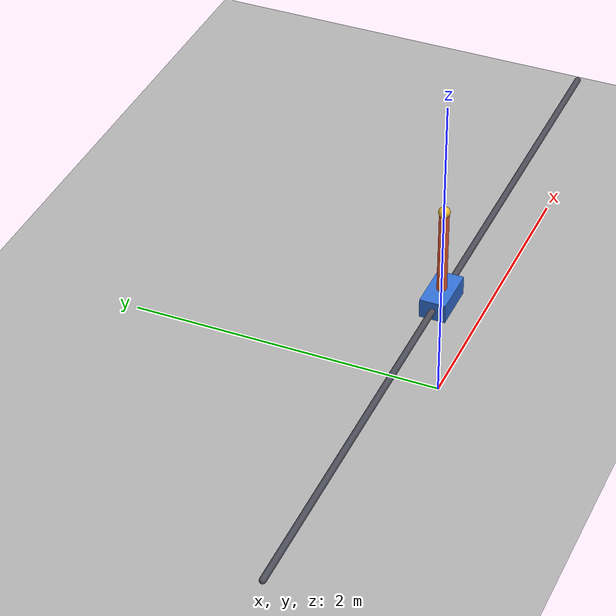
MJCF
<!-- 小车倒立摆场景：地面、光照 + 引入机器人描述 -->
<mujoco model="cartpole_scene">
  <include file="robot_description.xml"/>

  <statistic center="0 0 0.95" extent="2.5"/>

  <visual>
    <headlight diffuse="0.6 0.6 0.6" ambient="0.3 0.3 0.3" specular="0 0 0"/>
    <rgba haze="0.15 0.18 0.22 1"/>
    <global azimuth="90" elevation="-20"/>
  </visual>

  <asset>
    <texture type="skybox" builtin="gradient" rgb1="0.35 0.45 0.55"
             rgb2="0.05 0.08 0.12" width="512" height="512"/>
    <texture name="grid" type="2d" builtin="checker" mark="edge"
             rgb1="0.25 0.25 0.28" rgb2="0.32 0.32 0.35"
             markrgb="0.4 0.4 0.42" width="512" height="512"/>
    <material name="grid" texture="grid" texrepeat="8 8"
              reflectance="0.1"/>
  </asset>

  <worldbody>
    <light pos="0 0 3" dir="0 0 -1" directional="true"/>
    <geom name="floor" type="plane" size="4 4 0.05" material="grid"
          contype="0" conaffinity="0" condim="1"/>
  </worldbody>
</mujoco>

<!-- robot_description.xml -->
<!--
  二维一阶小车倒立摆（Cart-Pole）
  参数对齐常见教学/基准设定（近似 dm_control / Gym CartPole）：
    - 小车质量 1.0 kg，摆杆约 0.1 kg，杆长 0.6 m
    - 铰链近无阻尼，便于能量注入与起摆
    - 关闭接触，理想平面运动
-->
<mujoco model="cartpole">
  <compiler angle="radian" inertiafromgeom="true"/>

  <option timestep="0.002" gravity="0 0 -9.81" integrator="RK4">
    <flag contact="disable"/>
  </option>

  <default>
    <!-- 默认关节几乎无阻尼，避免默默耗散能量 -->
    <joint damping="0" armature="0"/>
    <geom rgba="0.7 0.7 0.7 1" contype="0" conaffinity="0"/>
  </default>

  <worldbody>
    <!-- 滑轨（仅可视化） -->
    <geom name="rail" type="capsule" fromto="-2.5 0 0.7 2.5 0 0.7"
          size="0.02" rgba="0.3 0.3 0.35 1"
          contype="0" conaffinity="0"/>

    <!-- 小车：沿 x 轴滑动 -->
    <body name="cart" pos="0 0 0.7">
      <!-- 轻微滑轨阻尼，保持可拖动、不过度发黏 -->
      <joint name="slider" type="slide" axis="1 0 0"
             limited="true" range="-2.2 2.2" damping="0.1"/>
      <geom name="cart_geom" type="box" size="0.15 0.08 0.06"
            mass="1.0" rgba="0.2 0.45 0.85 1"
            contype="0" conaffinity="0"/>
      <site name="cart_site" pos="0 0 0" size="0.01"/>

      <!-- 摆杆：θ=0 为竖直向上；质量集中在杆身，顶端小球仅作标记 -->
      <body name="pole" pos="0 0 0">
        <joint name="hinge" type="hinge" axis="0 1 0"
               limited="false" damping="0.01" frictionloss="0.005"/>
        <geom name="pole_geom" type="capsule" fromto="0 0 0 0 0 0.6"
              size="0.03" mass="0.1" rgba="0.9 0.35 0.2 1"
              contype="0" conaffinity="0"/>
        <geom name="pole_tip" type="sphere" pos="0 0 0.6"
              size="0.035" mass="0.001" rgba="0.95 0.75 0.2 1"
              contype="0" conaffinity="0"/>
        <site name="tip_site" pos="0 0 0.6" size="0.01"/>
      </body>
    </body>
  </worldbody>

  <contact>
    <exclude body1="cart" body2="pole"/>
  </contact>

  <!-- 控制力适当加大，便于起摆 / 平衡 -->
  <actuator>
    <motor name="cart_force" joint="slider" gear="1"
           ctrllimited="true" ctrlrange="-50 50"/>
  </actuator>

  <sensor>
    <jointpos name="cart_pos" joint="slider"/>
    <jointvel name="cart_vel" joint="slider"/>
    <jointpos name="pole_angle" joint="hinge"/>
    <jointvel name="pole_angvel" joint="hinge"/>
  </sensor>
</mujoco>
